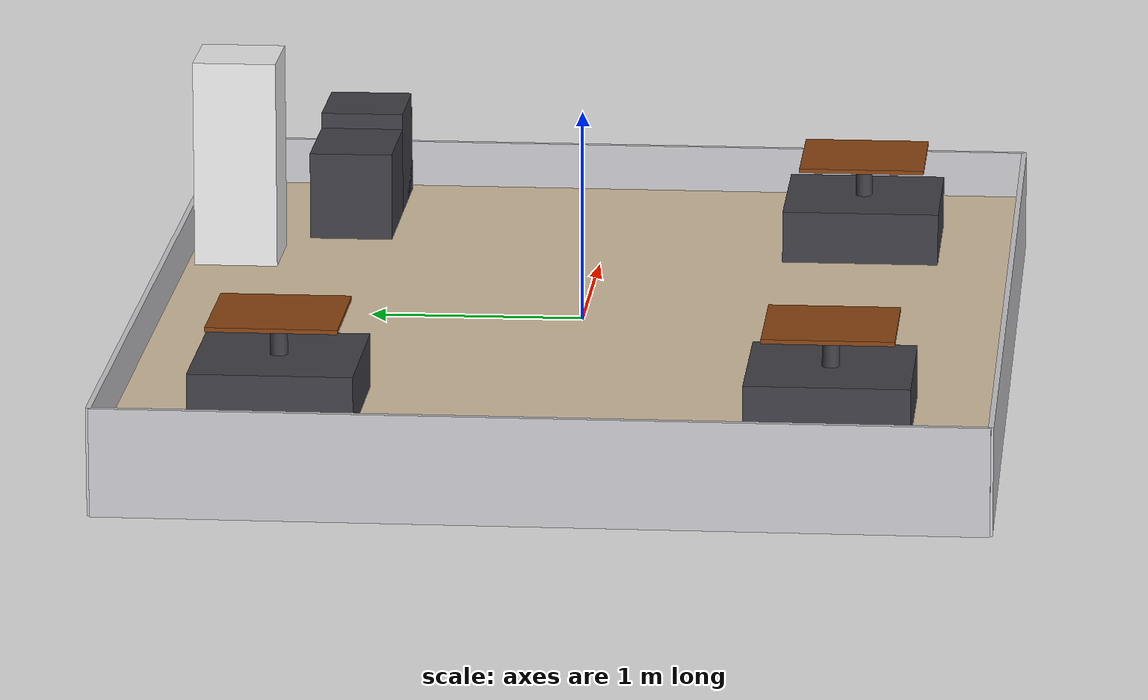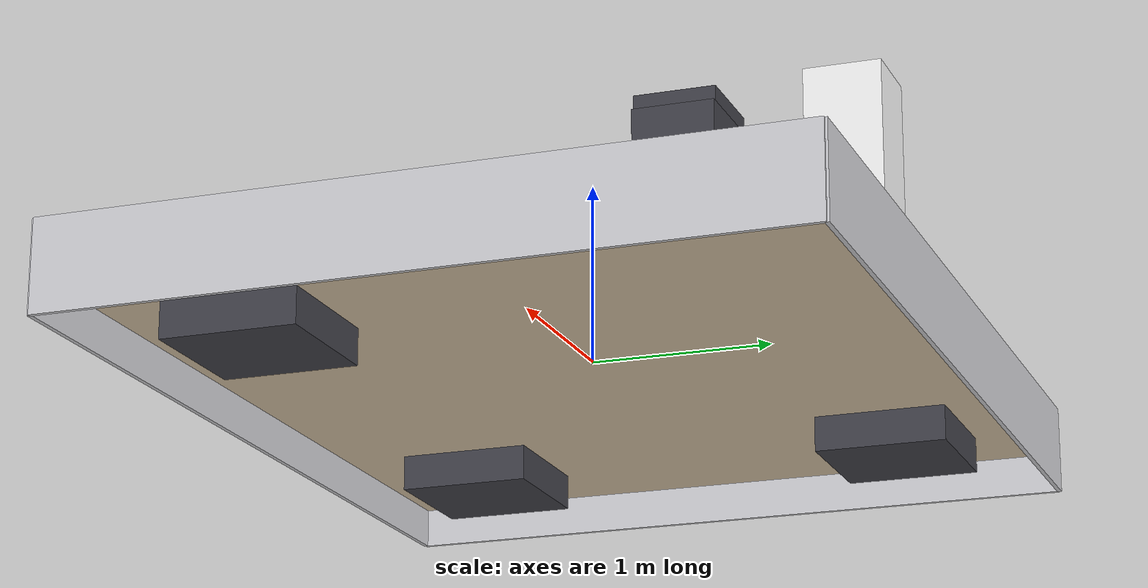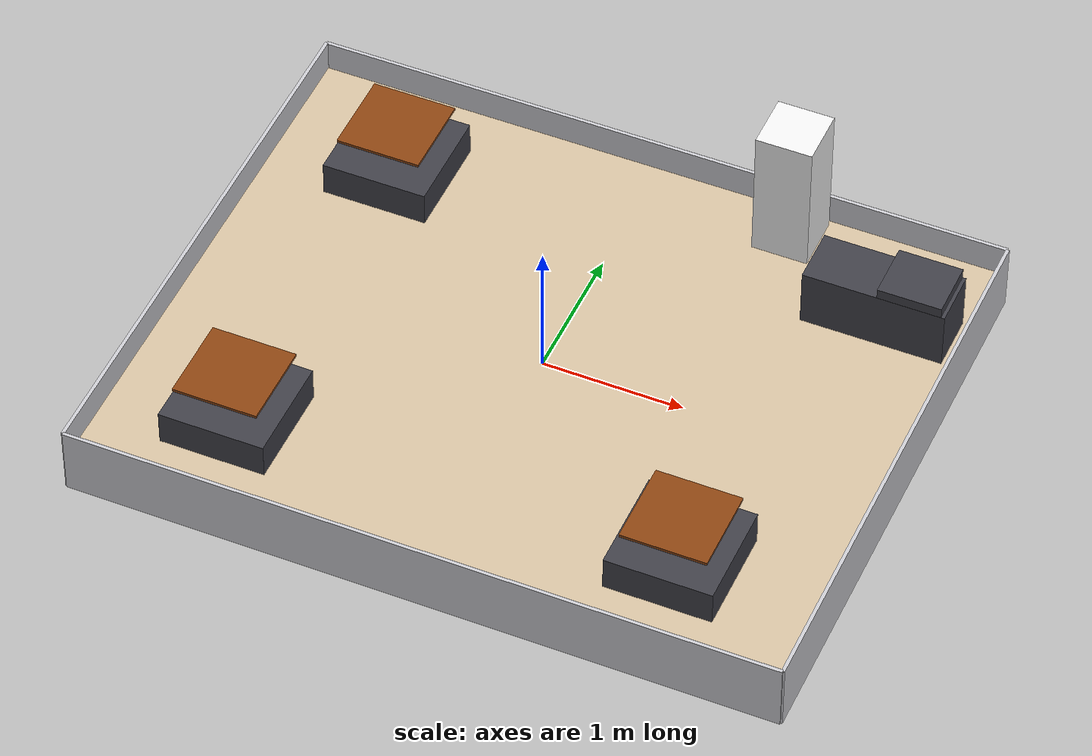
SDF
<?xml version="1.0" ?>
<sdf version="1.6">
  <model name="restaurant_env">
    <static>true</static>
    <link name="restaurant_env">

      <!-- Floor -->
      <collision name="floor_collision">
        <pose>0 0 -0.025 0 0 0</pose>
        <geometry>
          <box>
            <size>5 4 0.05</size>
          </box>
        </geometry>
      </collision>
      <visual name="floor_visual">
        <pose>0 0 -0.025 0 0 0</pose>
        <geometry>
          <box>
            <size>5 4 0.05</size>
          </box>
        </geometry>
        <material>
          <ambient>0.84 0.76 0.64 1</ambient>
          <diffuse>0.84 0.76 0.64 1</diffuse>
        </material>
      </visual>

      <!-- Walls -->
      <collision name="wall_north_collision">
        <pose>0 2 -0.025 0 0 0</pose>
        <geometry>
          <box><size>5 0.025 0.5</size></box>
        </geometry>
      </collision>
      <visual name="wall_north_visual">
        <pose>0 2 -0.025 0 0 0</pose>
        <geometry>
          <box><size>5 0.025 0.5</size></box>
        </geometry>
        <material><ambient>0.8 0.8 0.82 1</ambient><diffuse>0.8 0.8 0.82 1</diffuse></material>
      </visual>

      <collision name="wall_south_collision">
        <pose>0 -2 -0.025 0 0 0</pose>
        <geometry>
          <box><size>5 0.025 0.5</size></box>
        </geometry>
      </collision>
      <visual name="wall_south_visual">
        <pose>0 -2 -0.025 0 0 0</pose>
        <geometry>
          <box><size>5 0.025 0.5</size></box>
        </geometry>
        <material><ambient>0.8 0.8 0.82 1</ambient><diffuse>0.8 0.8 0.82 1</diffuse></material>
      </visual>

      <collision name="wall_east_collision">
        <pose>2.5 0 -0.025 0 0 0</pose>
        <geometry>
          <box><size>0.025 4 0.5</size></box>
        </geometry>
      </collision>
      <visual name="wall_east_visual">
        <pose>2.5 0 -0.025 0 0 0</pose>
        <geometry>
          <box><size>0.025 4 0.5</size></box>
        </geometry>
        <material><ambient>0.8 0.8 0.82 1</ambient><diffuse>0.8 0.8 0.82 1</diffuse></material>
      </visual>

      <collision name="wall_west_collision">
        <pose>-2.5 0 -0.025 0 0 0</pose>
        <geometry>
          <box><size>0.025 4 0.5</size></box>
        </geometry>
      </collision>
      <visual name="wall_west_visual">
        <pose>-2.5 0 -0.025 0 0 0</pose>
        <geometry>
          <box><size>0.025 4 0.5</size></box>
        </geometry>
        <material><ambient>0.8 0.8 0.82 1</ambient><diffuse>0.8 0.8 0.82 1</diffuse></material>
      </visual>

      <!-- Table 1 -->
      <collision name="table1_top_collision">
        <pose>-1.625 -1.25 0.4375 0 0 0</pose>
        <geometry>
          <box><size>0.6 0.6 0.02</size></box>
        </geometry>
      </collision>
      <visual name="table1_top_visual">
        <pose>-1.625 -1.25 0.4375 0 0 0</pose>
        <geometry>
          <box><size>0.6 0.6 0.02</size></box>
        </geometry>
        <material><ambient>0.55 0.27 0.07 1</ambient><diffuse>0.55 0.27 0.07 1</diffuse></material>
      </visual>

      <!-- Table 1 stem -->
      <collision name="table1_stem_collision">
        <pose>-1.625 -1.25 0.34 0 0 0</pose>
        <geometry>
          <cylinder><radius>0.04</radius><length>0.18</length></cylinder>
        </geometry>
      </collision>
      <visual name="table1_stem_visual">
        <pose>-1.625 -1.25 0.34 0 0 0</pose>
        <geometry>
          <cylinder><radius>0.04</radius><length>0.18</length></cylinder>
        </geometry>
        <material><ambient>0.25 0.25 0.28 1</ambient><diffuse>0.25 0.25 0.28 1</diffuse></material>
      </visual>

      <!-- Hollow cube legs -->
      <collision name="table1_legs_collision">
        <pose>-1.625 -1.25 0 0 0 0</pose>
        <geometry>
          <box><size>0.75 0.75 0.5</size></box>
        </geometry>
      </collision>
      <visual name="table1_legs_visual">
        <pose>-1.625 -1.25 0 0 0 0</pose>
        <geometry>
          <box><size>0.75 0.75 0.5</size></box>
        </geometry>
        <material><ambient>0.25 0.25 0.28 1</ambient><diffuse>0.25 0.25 0.28 1</diffuse></material>
      </visual>

      <!-- Table 2 -->
      <collision name="table2_top_collision">
        <pose>1.5 -1.25 0.4375 0 0 0</pose>
        <geometry>
          <box><size>0.6 0.6 0.02</size></box>
        </geometry>
      </collision>
      <visual name="table2_top_visual">
        <pose>1.5 -1.25 0.4375 0 0 0</pose>
        <geometry>
          <box><size>0.6 0.6 0.02</size></box>
        </geometry>
        <material><ambient>0.55 0.27 0.07 1</ambient><diffuse>0.55 0.27 0.07 1</diffuse></material>
      </visual>

      <!-- Table 2 stem -->
      <collision name="table2_stem_collision">
        <pose>1.5 -1.25 0.34 0 0 0</pose>
        <geometry>
          <cylinder><radius>0.04</radius><length>0.18</length></cylinder>
        </geometry>
      </collision>
      <visual name="table2_stem_visual">
        <pose>1.5 -1.25 0.34 0 0 0</pose>
        <geometry>
          <cylinder><radius>0.04</radius><length>0.18</length></cylinder>
        </geometry>
        <material><ambient>0.25 0.25 0.28 1</ambient><diffuse>0.25 0.25 0.28 1</diffuse></material>
      </visual>

      <!-- Hollow cube legs -->
      <collision name="table2_legs_collision">
        <pose>1.5 -1.25 0 0 0 0</pose>
        <geometry>
          <box><size>0.75 0.75 0.5</size></box>
        </geometry>
      </collision>
      <visual name="table2_legs_visual">
        <pose>1.5 -1.25 0 0 0 0</pose>
        <geometry>
          <box><size>0.75 0.75 0.5</size></box>
        </geometry>
        <material><ambient>0.25 0.25 0.28 1</ambient><diffuse>0.25 0.25 0.28 1</diffuse></material>
      </visual>

      <!-- Table 3 -->
      <collision name="table3_top_collision">
        <pose>-1.625 1.25 0.4375 0 0 0</pose>
        <geometry>
          <box><size>0.6 0.6 0.02</size></box>
        </geometry>
      </collision>
      <visual name="table3_top_visual">
        <pose>-1.625 1.25 0.4375 0 0 0</pose>
        <geometry>
          <box><size>0.6 0.6 0.02</size></box>
        </geometry>
        <material><ambient>0.55 0.27 0.07 1</ambient><diffuse>0.55 0.27 0.07 1</diffuse></material>
      </visual>

      <!-- Table 3 stem -->
      <collision name="table3_stem_collision">
        <pose>-1.625 1.25 0.34 0 0 0</pose>
        <geometry>
          <cylinder><radius>0.04</radius><length>0.18</length></cylinder>
        </geometry>
      </collision>
      <visual name="table3_stem_visual">
        <pose>-1.625 1.25 0.34 0 0 0</pose>
        <geometry>
          <cylinder><radius>0.04</radius><length>0.18</length></cylinder>
        </geometry>
        <material><ambient>0.25 0.25 0.28 1</ambient><diffuse>0.25 0.25 0.28 1</diffuse></material>
      </visual>

      <!-- Hollow cube legs -->
      <collision name="table3_legs_collision">
        <pose>-1.625 1.25 0 0 0 0</pose>
        <geometry>
          <box><size>0.75 0.75 0.5</size></box>
        </geometry>
      </collision>
      <visual name="table3_legs_visual">
        <pose>-1.625 1.25 0 0 0 0</pose>
        <geometry>
          <box><size>0.75 0.75 0.5</size></box>
        </geometry>
        <material><ambient>0.25 0.25 0.28 1</ambient><diffuse>0.25 0.25 0.28 1</diffuse></material>
      </visual>

      <!-- Kitchen block -->
      <collision name="kitchen_counter_collision">
        <pose>1.9 1.25 0.2 0 0 0</pose>
        <geometry><box><size>1.0 0.4 0.45</size></box></geometry>
      </collision>
      <visual name="kitchen_counter_visual">
        <pose>1.9 1.25 0.2 0 0 0</pose>
        <geometry><box><size>1.0 0.4 0.45</size></box></geometry>
        <material><ambient>0.25 0.25 0.28 1</ambient><diffuse>0.25 0.25 0.28 1</diffuse></material>
      </visual>

      <collision name="kitchen_cabinet_collision">
        <pose>2.15 1.25 0.25 0 0 0</pose>
        <geometry><box><size>0.45 0.4 0.5</size></box></geometry>
      </collision>
      <visual name="kitchen_cabinet_visual">
        <pose>2.15 1.25 0.25 0 0 0</pose>
        <geometry><box><size>0.45 0.4 0.5</size></box></geometry>
        <material><ambient>0.25 0.25 0.28 1</ambient><diffuse>0.25 0.25 0.28 1</diffuse></material>
      </visual>

      <collision name="kitchen_fridge_collision">
        <pose>1.05 1.75 0.5 0 0 0</pose>
        <geometry><box><size>0.4 0.4 1.0</size></box></geometry>
      </collision>
      <visual name="kitchen_fridge_visual">
        <pose>1.05 1.75 0.5 0 0 0</pose>
        <geometry><box><size>0.4 0.4 1.0</size></box></geometry>
        <material><ambient>0.95 0.95 0.95 1</ambient><diffuse>0.95 0.95 0.95 1</diffuse></material>
      </visual>
    </link>

    <!-- Light -->
    <light type="directional" name="sun_light">
      <pose>0 0 5 0.3 0.5 0</pose>
      <diffuse>1 1 1 1</diffuse>
      <specular>0.1 0.1 0.1 1</specular>
      <cast_shadows>true</cast_shadows>
      <attenuation>
        <range>50</range>
        <constant>0.9</constant>
        <linear>0.01</linear>
        <quadratic>0.001</quadratic>
      </attenuation>
    </light>
  </model>
</sdf>
